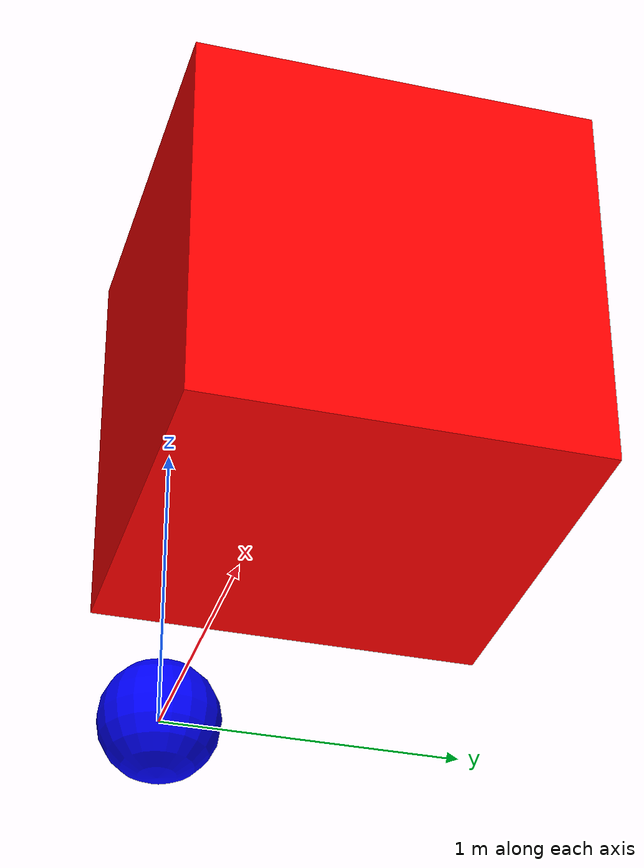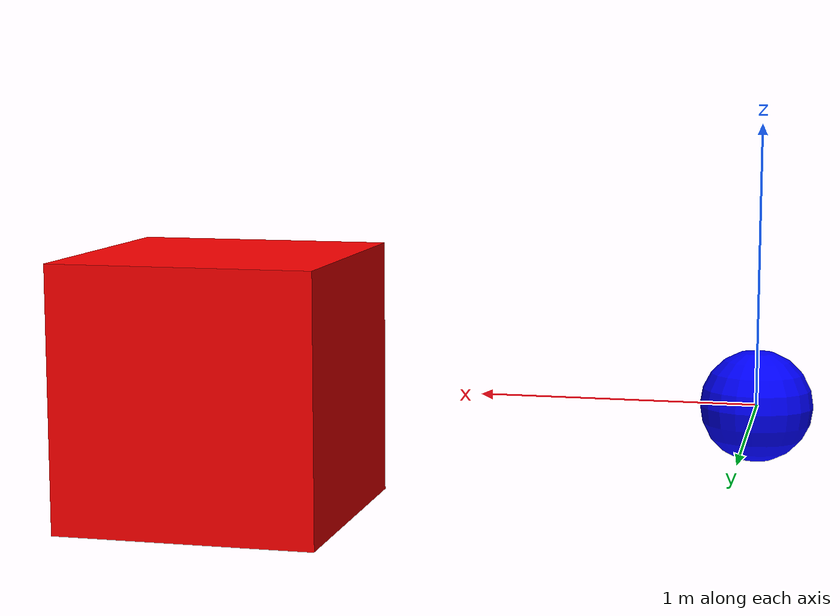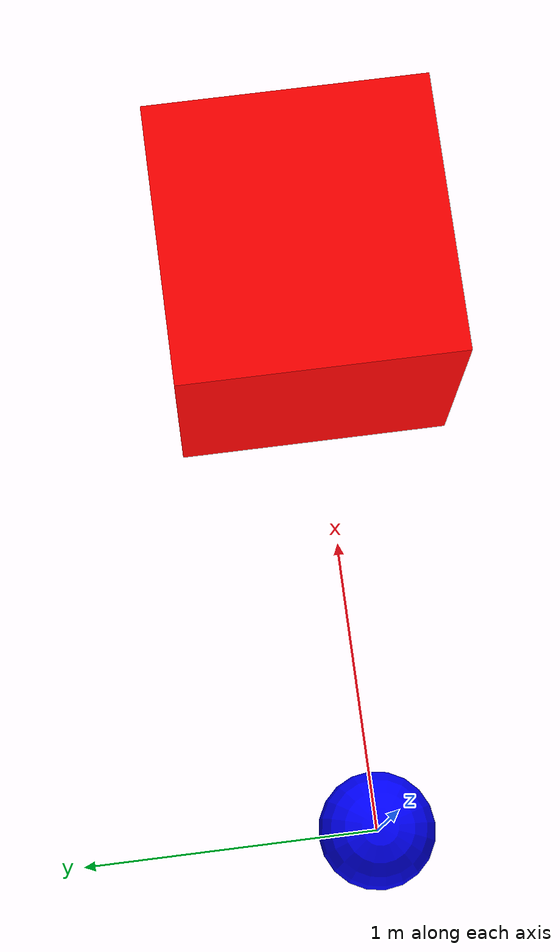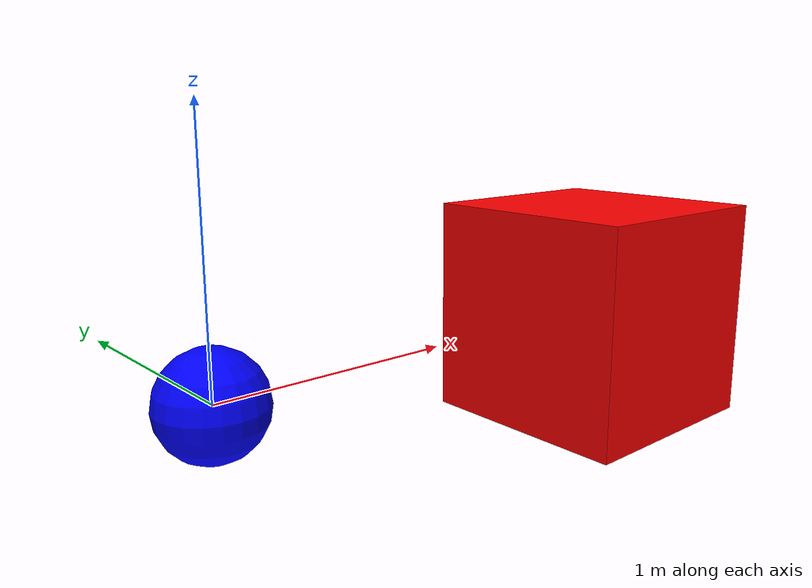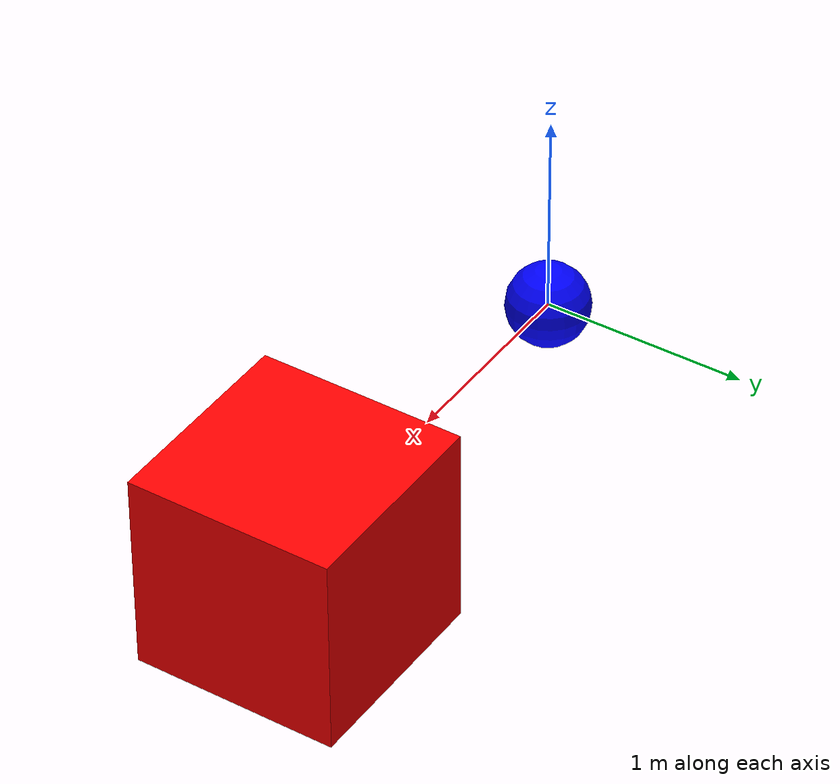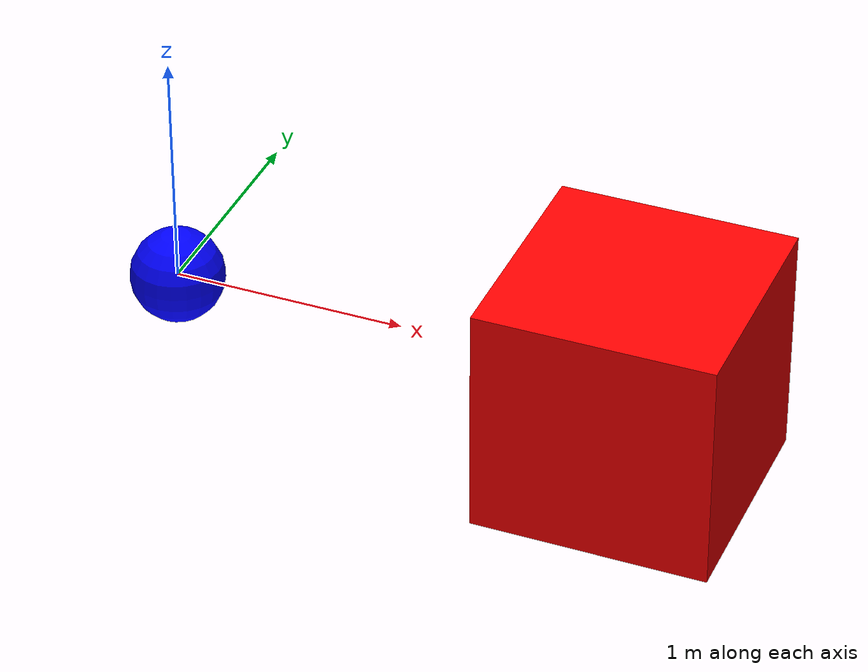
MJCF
<mujoco>
    <worldbody>
        <!-- 障碍物定义 -->
        <body name="obstacle" pos="2 0 0">
            <geom type="box" size="0.5 0.5 0.5" rgba="1 0 0 1"/>
        </body>

        <!-- 其他模型 -->
        <body name="robot" pos="0 0 0">
            <geom type="sphere" size="0.2" rgba="0 0 1 1"/>
        </body>
    </worldbody>
</mujoco>
